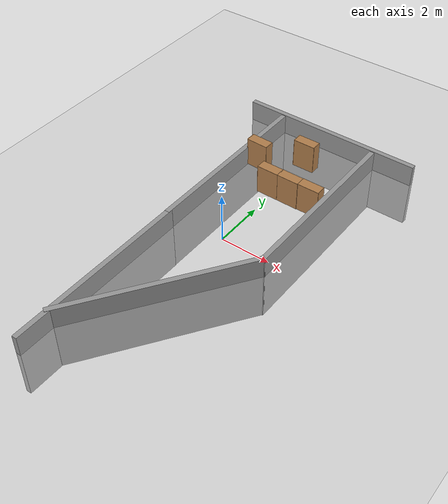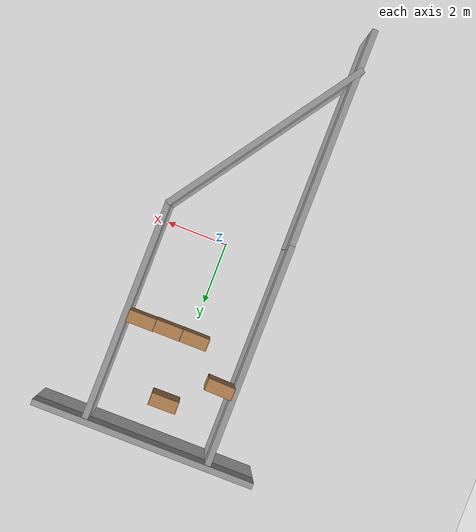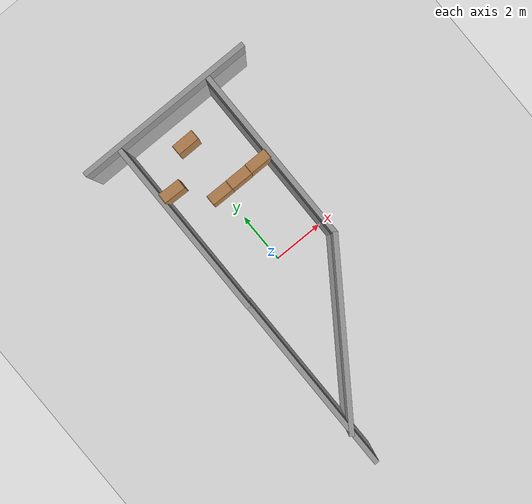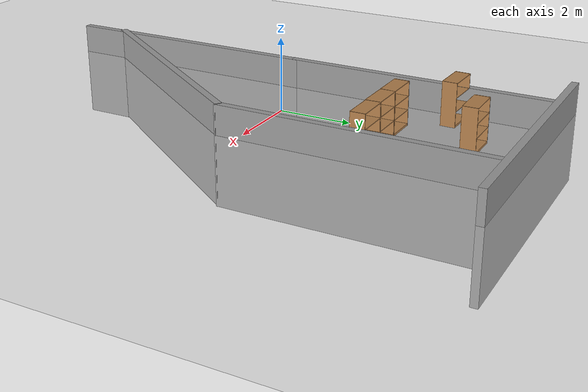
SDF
<sdf version="1.7">
 <world name="default">
  <light name="sun" type="directional">
   <pose>0 0 10 0 -0 0</pose>
   <diffuse>0.8 0.8 0.8 1</diffuse>
   <specular>0.2 0.2 0.2 1</specular>
   <attenuation>
    <range>1000</range>
    <constant>0.9</constant>
    <linear>0.01</linear>
    <quadratic>0.001</quadratic>
   </attenuation>
   <direction>-0.5 0.1 -0.9</direction>
   <spot><inner_angle>0</inner_angle><outer_angle>0</outer_angle><falloff>0</falloff></spot>
  </light>
  <model name="ground_plane">
   <static>1</static>
   <link name="link">
    <collision name="collision">
     <geometry><plane><normal>0 0 1</normal><size>100 100</size></plane></geometry>
     <surface>
      <contact><collide_bitmask>65535</collide_bitmask></contact>
      <friction><ode><mu>100</mu><mu2>50</mu2></ode></friction>
     </surface>
    </collision>
    <visual name="visual">
     <cast_shadows>0</cast_shadows>
     <geometry><plane><normal>0 0 1</normal><size>100 100</size></plane></geometry>
     <material>
      <script><uri>file://media/materials/scripts/gazebo.material</uri><name>Gazebo/Grey</name></script>
     </material>
    </visual>
   </link>
  </model>
  <gravity>0 0 -9.8</gravity>
  <magnetic_field>6e-06 2.3e-05 -4.2e-05</magnetic_field>
  <atmosphere type="adiabatic"/>
  <physics type="ode">
   <max_step_size>0.001</max_step_size>
   <real_time_factor>1</real_time_factor>
   <real_time_update_rate>1000</real_time_update_rate>
  </physics>
  <scene><ambient>0.4 0.4 0.4 1</ambient><background>0.7 0.7 0.7 1</background><shadows>1</shadows></scene>
  <audio><device>default</device></audio>
  <spherical_coordinates>
   <surface_model>EARTH_WGS84</surface_model>
   <latitude_deg>0</latitude_deg>
   <longitude_deg>0</longitude_deg>
   <elevation>0</elevation>
   <heading_deg>0</heading_deg>
  </spherical_coordinates>
  <model name="grey_wall">
   <static>1</static>
   <link name="link">
    <pose>0 0 1.4 0 -0 0</pose>
    <collision name="collision"><geometry><box><size>7.5 0.2 2.8</size></box></geometry></collision>
    <visual name="visual">
     <cast_shadows>0</cast_shadows>
     <geometry><box><size>7.5 0.2 2.8</size></box></geometry>
     <material>
      <script>
       <uri>model://grey_wall/materials/scripts</uri>
       <uri>model://grey_wall/materials/textures</uri>
       <name>vrc/grey_wall</name>
      </script>
     </material>
    </visual>
   </link>
   <pose>-1.9582 3.04411 -1.98971 0 -0 1.56828</pose>
  </model>
  <model name="grey_wall_clone">
   <static>1</static>
   <link name="link">
    <pose>0 0 1.4 0 -0 0</pose>
    <collision name="collision"><geometry><box><size>7.5 0.2 2.8</size></box></geometry></collision>
    <visual name="visual">
     <cast_shadows>0</cast_shadows>
     <geometry><box><size>7.5 0.2 2.8</size></box></geometry>
     <material>
      <script>
       <uri>model://grey_wall/materials/scripts</uri>
       <uri>model://grey_wall/materials/textures</uri>
       <name>vrc/grey_wall</name>
      </script>
     </material>
    </visual>
   </link>
   <pose>2.21172 3.09369 -1.98971 0 -0 1.56828</pose>
  </model>
  <model name="grey_wall_clone_clone">
   <static>1</static>
   <link name="link">
    <pose>0 0 1.4 0 -0 0</pose>
    <collision name="collision"><geometry><box><size>7.5 0.2 2.8</size></box></geometry></collision>
    <visual name="visual">
     <cast_shadows>0</cast_shadows>
     <geometry><box><size>7.5 0.2 2.8</size></box></geometry>
     <material>
      <script>
       <uri>model://grey_wall/materials/scripts</uri>
       <uri>model://grey_wall/materials/textures</uri>
       <name>vrc/grey_wall</name>
      </script>
     </material>
    </visual>
   </link>
   <pose>0.079882 -3.63146 -1.97653 0 -0 0.962156</pose>
  </model>
  <model name="grey_wall_clone_clone_0">
   <static>1</static>
   <link name="link">
    <pose>0 0 1.4 0 -0 0</pose>
    <collision name="collision"><geometry><box><size>7.5 0.2 2.8</size></box></geometry></collision>
    <visual name="visual">
     <cast_shadows>0</cast_shadows>
     <geometry><box><size>7.5 0.2 2.8</size></box></geometry>
     <material>
      <script>
       <uri>model://grey_wall/materials/scripts</uri>
       <uri>model://grey_wall/materials/textures</uri>
       <name>vrc/grey_wall</name>
      </script>
     </material>
    </visual>
   </link>
   <pose>-1.96403 -4.29078 -1.98971 0 -0 1.56828</pose>
  </model>
  <model name="grey_wall_0">
   <static>1</static>
   <link name="link">
    <pose>0 0 1.4 0 -0 0</pose>
    <collision name="collision"><geometry><box><size>7.5 0.2 2.8</size></box></geometry></collision>
    <visual name="visual">
     <cast_shadows>0</cast_shadows>
     <geometry><box><size>7.5 0.2 2.8</size></box></geometry>
     <material>
      <script>
       <uri>model://grey_wall/materials/scripts</uri>
       <uri>model://grey_wall/materials/textures</uri>
       <name>vrc/grey_wall</name>
      </script>
     </material>
    </visual>
   </link>
   <pose>0.233736 6.85186 -1.95018 0 -0 0</pose>
  </model>
  <model name="bookshelf">
   <static>1</static>
   <link name="link">
    <inertial><mass>1</mass></inertial>
    <collision name="back">
     <pose>0 0.005 0.6 0 -0 0</pose>
     <geometry><box><size>0.9 0.01 1.2</size></box></geometry>
    </collision>
    <visual name="visual1">
     <pose>0 0.005 0.6 0 -0 0</pose>
     <geometry><box><size>0.9 0.01 1.2</size></box></geometry>
     <material>
      <script><uri>file://media/materials/scripts/gazebo.material</uri><name>Gazebo/Wood</name></script>
     </material>
    </visual>
    <collision name="left_side">
     <pose>0.45 -0.195 0.6 0 -0 0</pose>
     <geometry><box><size>0.02 0.4 1.2</size></box></geometry>
    </collision>
    <visual name="visual2">
     <pose>0.45 -0.195 0.6 0 -0 0</pose>
     <geometry><box><size>0.02 0.4 1.2</size></box></geometry>
     <material>
      <script><uri>file://media/materials/scripts/gazebo.material</uri><name>Gazebo/Wood</name></script>
     </material>
    </visual>
    <collision name="right_side">
     <pose>-0.45 -0.195 0.6 0 -0 0</pose>
     <geometry><box><size>0.02 0.4 1.2</size></box></geometry>
    </collision>
    <visual name="visual3">
     <pose>-0.45 -0.195 0.6 0 -0 0</pose>
     <geometry><box><size>0.02 0.4 1.2</size></box></geometry>
     <material>
      <script><uri>file://media/materials/scripts/gazebo.material</uri><name>Gazebo/Wood</name></script>
     </material>
    </visual>
    <collision name="bottom">
     <pose>0 -0.195 0.03 0 -0 0</pose>
     <geometry><box><size>0.88 0.4 0.06</size></box></geometry>
    </collision>
    <visual name="visual4">
     <pose>0 -0.195 0.03 0 -0 0</pose>
     <geometry><box><size>0.88 0.4 0.06</size></box></geometry>
     <material>
      <script><uri>file://media/materials/scripts/gazebo.material</uri><name>Gazebo/Wood</name></script>
     </material>
    </visual>
    <collision name="top">
     <pose>0 -0.195 1.19 0 -0 0</pose>
     <geometry><box><size>0.88 0.4 0.02</size></box></geometry>
    </collision>
    <visual name="visual5">
     <pose>0 -0.195 1.19 0 -0 0</pose>
     <geometry><box><size>0.88 0.4 0.02</size></box></geometry>
     <material>
      <script><uri>file://media/materials/scripts/gazebo.material</uri><name>Gazebo/Wood</name></script>
     </material>
    </visual>
    <collision name="low_shelf">
     <pose>0 -0.195 0.43 0 -0 0</pose>
     <geometry><box><size>0.88 0.4 0.02</size></box></geometry>
    </collision>
    <visual name="visual6">
     <pose>0 -0.195 0.43 0 -0 0</pose>
     <geometry><box><size>0.88 0.4 0.02</size></box></geometry>
     <material>
      <script><uri>file://media/materials/scripts/gazebo.material</uri><name>Gazebo/Wood</name></script>
     </material>
    </visual>
    <collision name="high_shelf">
     <pose>0 -0.195 0.8 0 -0 0</pose>
     <geometry><box><size>0.88 0.4 0.02</size></box></geometry>
    </collision>
    <visual name="visual7">
     <pose>0 -0.195 0.8 0 -0 0</pose>
     <geometry><box><size>0.88 0.4 0.02</size></box></geometry>
     <material>
      <script><uri>file://media/materials/scripts/gazebo.material</uri><name>Gazebo/Wood</name></script>
     </material>
    </visual>
   </link>
   <pose>1.65043 2.98729 0 0 0 -3.14024</pose>
  </model>
  <model name="bookshelf_0">
   <static>1</static>
   <link name="link">
    <inertial><mass>1</mass></inertial>
    <collision name="back">
     <pose>0 0.005 0.6 0 -0 0</pose>
     <geometry><box><size>0.9 0.01 1.2</size></box></geometry>
    </collision>
    <visual name="visual1">
     <pose>0 0.005 0.6 0 -0 0</pose>
     <geometry><box><size>0.9 0.01 1.2</size></box></geometry>
     <material>
      <script><uri>file://media/materials/scripts/gazebo.material</uri><name>Gazebo/Wood</name></script>
     </material>
    </visual>
    <collision name="left_side">
     <pose>0.45 -0.195 0.6 0 -0 0</pose>
     <geometry><box><size>0.02 0.4 1.2</size></box></geometry>
    </collision>
    <visual name="visual2">
     <pose>0.45 -0.195 0.6 0 -0 0</pose>
     <geometry><box><size>0.02 0.4 1.2</size></box></geometry>
     <material>
      <script><uri>file://media/materials/scripts/gazebo.material</uri><name>Gazebo/Wood</name></script>
     </material>
    </visual>
    <collision name="right_side">
     <pose>-0.45 -0.195 0.6 0 -0 0</pose>
     <geometry><box><size>0.02 0.4 1.2</size></box></geometry>
    </collision>
    <visual name="visual3">
     <pose>-0.45 -0.195 0.6 0 -0 0</pose>
     <geometry><box><size>0.02 0.4 1.2</size></box></geometry>
     <material>
      <script><uri>file://media/materials/scripts/gazebo.material</uri><name>Gazebo/Wood</name></script>
     </material>
    </visual>
    <collision name="bottom">
     <pose>0 -0.195 0.03 0 -0 0</pose>
     <geometry><box><size>0.88 0.4 0.06</size></box></geometry>
    </collision>
    <visual name="visual4">
     <pose>0 -0.195 0.03 0 -0 0</pose>
     <geometry><box><size>0.88 0.4 0.06</size></box></geometry>
     <material>
      <script><uri>file://media/materials/scripts/gazebo.material</uri><name>Gazebo/Wood</name></script>
     </material>
    </visual>
    <collision name="top">
     <pose>0 -0.195 1.19 0 -0 0</pose>
     <geometry><box><size>0.88 0.4 0.02</size></box></geometry>
    </collision>
    <visual name="visual5">
     <pose>0 -0.195 1.19 0 -0 0</pose>
     <geometry><box><size>0.88 0.4 0.02</size></box></geometry>
     <material>
      <script><uri>file://media/materials/scripts/gazebo.material</uri><name>Gazebo/Wood</name></script>
     </material>
    </visual>
    <collision name="low_shelf">
     <pose>0 -0.195 0.43 0 -0 0</pose>
     <geometry><box><size>0.88 0.4 0.02</size></box></geometry>
    </collision>
    <visual name="visual6">
     <pose>0 -0.195 0.43 0 -0 0</pose>
     <geometry><box><size>0.88 0.4 0.02</size></box></geometry>
     <material>
      <script><uri>file://media/materials/scripts/gazebo.material</uri><name>Gazebo/Wood</name></script>
     </material>
    </visual>
    <collision name="high_shelf">
     <pose>0 -0.195 0.8 0 -0 0</pose>
     <geometry><box><size>0.88 0.4 0.02</size></box></geometry>
    </collision>
    <visual name="visual7">
     <pose>0 -0.195 0.8 0 -0 0</pose>
     <geometry><box><size>0.88 0.4 0.02</size></box></geometry>
     <material>
      <script><uri>file://media/materials/scripts/gazebo.material</uri><name>Gazebo/Wood</name></script>
     </material>
    </visual>
   </link>
   <pose>0.754404 2.97412 0 0 -0 3.1374</pose>
  </model>
  <model name="bookshelf_1">
   <static>1</static>
   <link name="link">
    <inertial><mass>1</mass></inertial>
    <collision name="back">
     <pose>0 0.005 0.6 0 -0 0</pose>
     <geometry><box><size>0.9 0.01 1.2</size></box></geometry>
    </collision>
    <visual name="visual1">
     <pose>0 0.005 0.6 0 -0 0</pose>
     <geometry><box><size>0.9 0.01 1.2</size></box></geometry>
     <material>
      <script><uri>file://media/materials/scripts/gazebo.material</uri><name>Gazebo/Wood</name></script>
     </material>
    </visual>
    <collision name="left_side">
     <pose>0.45 -0.195 0.6 0 -0 0</pose>
     <geometry><box><size>0.02 0.4 1.2</size></box></geometry>
    </collision>
    <visual name="visual2">
     <pose>0.45 -0.195 0.6 0 -0 0</pose>
     <geometry><box><size>0.02 0.4 1.2</size></box></geometry>
     <material>
      <script><uri>file://media/materials/scripts/gazebo.material</uri><name>Gazebo/Wood</name></script>
     </material>
    </visual>
    <collision name="right_side">
     <pose>-0.45 -0.195 0.6 0 -0 0</pose>
     <geometry><box><size>0.02 0.4 1.2</size></box></geometry>
    </collision>
    <visual name="visual3">
     <pose>-0.45 -0.195 0.6 0 -0 0</pose>
     <geometry><box><size>0.02 0.4 1.2</size></box></geometry>
     <material>
      <script><uri>file://media/materials/scripts/gazebo.material</uri><name>Gazebo/Wood</name></script>
     </material>
    </visual>
    <collision name="bottom">
     <pose>0 -0.195 0.03 0 -0 0</pose>
     <geometry><box><size>0.88 0.4 0.06</size></box></geometry>
    </collision>
    <visual name="visual4">
     <pose>0 -0.195 0.03 0 -0 0</pose>
     <geometry><box><size>0.88 0.4 0.06</size></box></geometry>
     <material>
      <script><uri>file://media/materials/scripts/gazebo.material</uri><name>Gazebo/Wood</name></script>
     </material>
    </visual>
    <collision name="top">
     <pose>0 -0.195 1.19 0 -0 0</pose>
     <geometry><box><size>0.88 0.4 0.02</size></box></geometry>
    </collision>
    <visual name="visual5">
     <pose>0 -0.195 1.19 0 -0 0</pose>
     <geometry><box><size>0.88 0.4 0.02</size></box></geometry>
     <material>
      <script><uri>file://media/materials/scripts/gazebo.material</uri><name>Gazebo/Wood</name></script>
     </material>
    </visual>
    <collision name="low_shelf">
     <pose>0 -0.195 0.43 0 -0 0</pose>
     <geometry><box><size>0.88 0.4 0.02</size></box></geometry>
    </collision>
    <visual name="visual6">
     <pose>0 -0.195 0.43 0 -0 0</pose>
     <geometry><box><size>0.88 0.4 0.02</size></box></geometry>
     <material>
      <script><uri>file://media/materials/scripts/gazebo.material</uri><name>Gazebo/Wood</name></script>
     </material>
    </visual>
    <collision name="high_shelf">
     <pose>0 -0.195 0.8 0 -0 0</pose>
     <geometry><box><size>0.88 0.4 0.02</size></box></geometry>
    </collision>
    <visual name="visual7">
     <pose>0 -0.195 0.8 0 -0 0</pose>
     <geometry><box><size>0.88 0.4 0.02</size></box></geometry>
     <material>
      <script><uri>file://media/materials/scripts/gazebo.material</uri><name>Gazebo/Wood</name></script>
     </material>
    </visual>
   </link>
   <pose>-0.128448 2.97412 0 0 -0 3.13622</pose>
  </model>
  <model name="bookshelf_2">
   <static>1</static>
   <link name="link">
    <inertial><mass>1</mass></inertial>
    <collision name="back">
     <pose>0 0.005 0.6 0 -0 0</pose>
     <geometry><box><size>0.9 0.01 1.2</size></box></geometry>
    </collision>
    <visual name="visual1">
     <pose>0 0.005 0.6 0 -0 0</pose>
     <geometry><box><size>0.9 0.01 1.2</size></box></geometry>
     <material>
      <script><uri>file://media/materials/scripts/gazebo.material</uri><name>Gazebo/Wood</name></script>
     </material>
    </visual>
    <collision name="left_side">
     <pose>0.45 -0.195 0.6 0 -0 0</pose>
     <geometry><box><size>0.02 0.4 1.2</size></box></geometry>
    </collision>
    <visual name="visual2">
     <pose>0.45 -0.195 0.6 0 -0 0</pose>
     <geometry><box><size>0.02 0.4 1.2</size></box></geometry>
     <material>
      <script><uri>file://media/materials/scripts/gazebo.material</uri><name>Gazebo/Wood</name></script>
     </material>
    </visual>
    <collision name="right_side">
     <pose>-0.45 -0.195 0.6 0 -0 0</pose>
     <geometry><box><size>0.02 0.4 1.2</size></box></geometry>
    </collision>
    <visual name="visual3">
     <pose>-0.45 -0.195 0.6 0 -0 0</pose>
     <geometry><box><size>0.02 0.4 1.2</size></box></geometry>
     <material>
      <script><uri>file://media/materials/scripts/gazebo.material</uri><name>Gazebo/Wood</name></script>
     </material>
    </visual>
    <collision name="bottom">
     <pose>0 -0.195 0.03 0 -0 0</pose>
     <geometry><box><size>0.88 0.4 0.06</size></box></geometry>
    </collision>
    <visual name="visual4">
     <pose>0 -0.195 0.03 0 -0 0</pose>
     <geometry><box><size>0.88 0.4 0.06</size></box></geometry>
     <material>
      <script><uri>file://media/materials/scripts/gazebo.material</uri><name>Gazebo/Wood</name></script>
     </material>
    </visual>
    <collision name="top">
     <pose>0 -0.195 1.19 0 -0 0</pose>
     <geometry><box><size>0.88 0.4 0.02</size></box></geometry>
    </collision>
    <visual name="visual5">
     <pose>0 -0.195 1.19 0 -0 0</pose>
     <geometry><box><size>0.88 0.4 0.02</size></box></geometry>
     <material>
      <script><uri>file://media/materials/scripts/gazebo.material</uri><name>Gazebo/Wood</name></script>
     </material>
    </visual>
    <collision name="low_shelf">
     <pose>0 -0.195 0.43 0 -0 0</pose>
     <geometry><box><size>0.88 0.4 0.02</size></box></geometry>
    </collision>
    <visual name="visual6">
     <pose>0 -0.195 0.43 0 -0 0</pose>
     <geometry><box><size>0.88 0.4 0.02</size></box></geometry>
     <material>
      <script><uri>file://media/materials/scripts/gazebo.material</uri><name>Gazebo/Wood</name></script>
     </material>
    </visual>
    <collision name="high_shelf">
     <pose>0 -0.195 0.8 0 -0 0</pose>
     <geometry><box><size>0.88 0.4 0.02</size></box></geometry>
    </collision>
    <visual name="visual7">
     <pose>0 -0.195 0.8 0 -0 0</pose>
     <geometry><box><size>0.88 0.4 0.02</size></box></geometry>
     <material>
      <script><uri>file://media/materials/scripts/gazebo.material</uri><name>Gazebo/Wood</name></script>
     </material>
    </visual>
   </link>
   <pose>-1.43296 4.12051 0 0 -0 3.11318</pose>
  </model>
  <model name="bookshelf_3">
   <static>1</static>
   <link name="link">
    <inertial><mass>1</mass></inertial>
    <collision name="back">
     <pose>0 0.005 0.6 0 -0 0</pose>
     <geometry><box><size>0.9 0.01 1.2</size></box></geometry>
    </collision>
    <visual name="visual1">
     <pose>0 0.005 0.6 0 -0 0</pose>
     <geometry><box><size>0.9 0.01 1.2</size></box></geometry>
     <material>
      <script><uri>file://media/materials/scripts/gazebo.material</uri><name>Gazebo/Wood</name></script>
     </material>
    </visual>
    <collision name="left_side">
     <pose>0.45 -0.195 0.6 0 -0 0</pose>
     <geometry><box><size>0.02 0.4 1.2</size></box></geometry>
    </collision>
    <visual name="visual2">
     <pose>0.45 -0.195 0.6 0 -0 0</pose>
     <geometry><box><size>0.02 0.4 1.2</size></box></geometry>
     <material>
      <script><uri>file://media/materials/scripts/gazebo.material</uri><name>Gazebo/Wood</name></script>
     </material>
    </visual>
    <collision name="right_side">
     <pose>-0.45 -0.195 0.6 0 -0 0</pose>
     <geometry><box><size>0.02 0.4 1.2</size></box></geometry>
    </collision>
    <visual name="visual3">
     <pose>-0.45 -0.195 0.6 0 -0 0</pose>
     <geometry><box><size>0.02 0.4 1.2</size></box></geometry>
     <material>
      <script><uri>file://media/materials/scripts/gazebo.material</uri><name>Gazebo/Wood</name></script>
     </material>
    </visual>
    <collision name="bottom">
     <pose>0 -0.195 0.03 0 -0 0</pose>
     <geometry><box><size>0.88 0.4 0.06</size></box></geometry>
    </collision>
    <visual name="visual4">
     <pose>0 -0.195 0.03 0 -0 0</pose>
     <geometry><box><size>0.88 0.4 0.06</size></box></geometry>
     <material>
      <script><uri>file://media/materials/scripts/gazebo.material</uri><name>Gazebo/Wood</name></script>
     </material>
    </visual>
    <collision name="top">
     <pose>0 -0.195 1.19 0 -0 0</pose>
     <geometry><box><size>0.88 0.4 0.02</size></box></geometry>
    </collision>
    <visual name="visual5">
     <pose>0 -0.195 1.19 0 -0 0</pose>
     <geometry><box><size>0.88 0.4 0.02</size></box></geometry>
     <material>
      <script><uri>file://media/materials/scripts/gazebo.material</uri><name>Gazebo/Wood</name></script>
     </material>
    </visual>
    <collision name="low_shelf">
     <pose>0 -0.195 0.43 0 -0 0</pose>
     <geometry><box><size>0.88 0.4 0.02</size></box></geometry>
    </collision>
    <visual name="visual6">
     <pose>0 -0.195 0.43 0 -0 0</pose>
     <geometry><box><size>0.88 0.4 0.02</size></box></geometry>
     <material>
      <script><uri>file://media/materials/scripts/gazebo.material</uri><name>Gazebo/Wood</name></script>
     </material>
    </visual>
    <collision name="high_shelf">
     <pose>0 -0.195 0.8 0 -0 0</pose>
     <geometry><box><size>0.88 0.4 0.02</size></box></geometry>
    </collision>
    <visual name="visual7">
     <pose>0 -0.195 0.8 0 -0 0</pose>
     <geometry><box><size>0.88 0.4 0.02</size></box></geometry>
     <material>
      <script><uri>file://media/materials/scripts/gazebo.material</uri><name>Gazebo/Wood</name></script>
     </material>
    </visual>
   </link>
   <pose>0.069206 5.16148 0 0 -0 -3.13317</pose>
  </model>
 </world>
</sdf>
